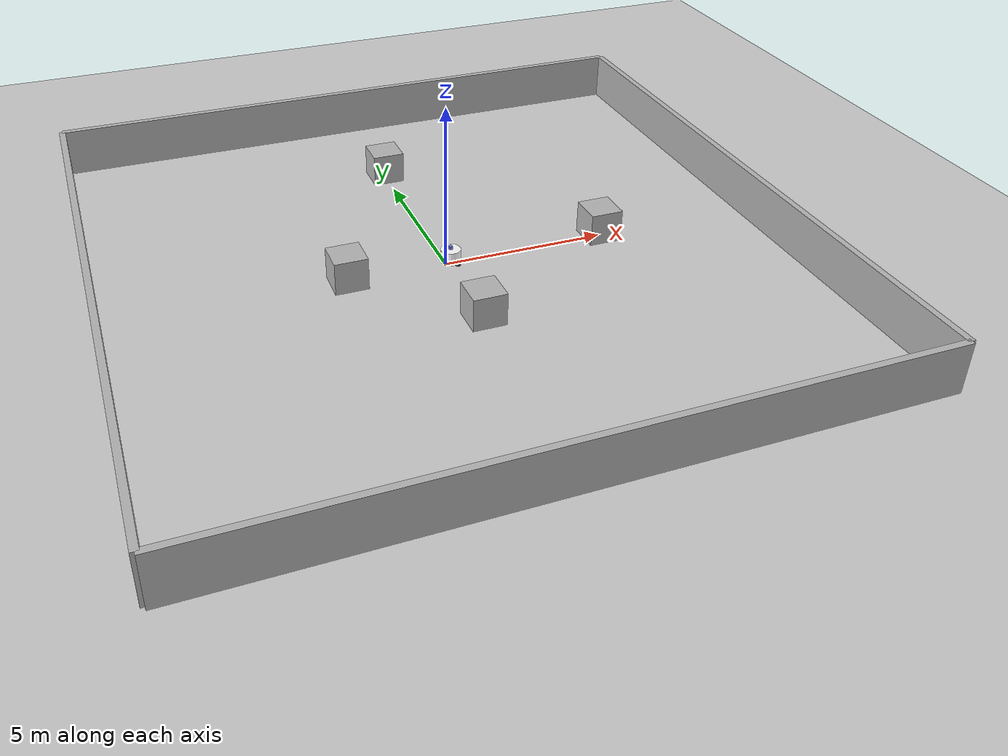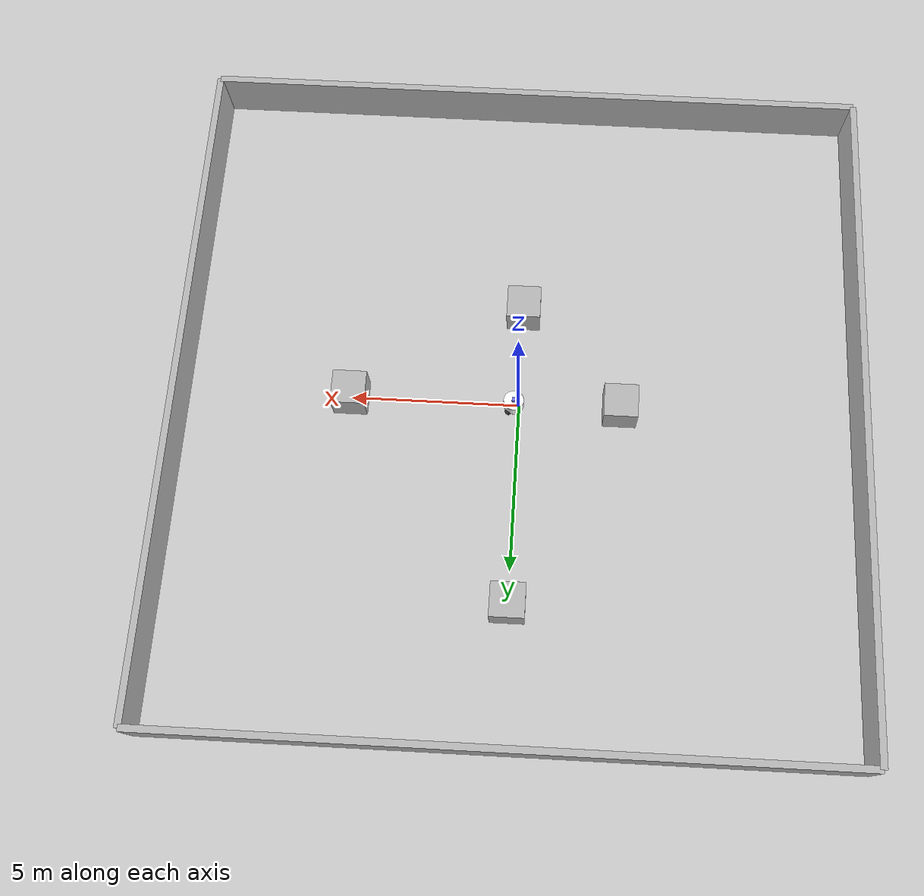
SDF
<?xml version="1.0" ?>
<sdf version="1.6">
  <world name="diff_drive">

    <physics name="1ms" type="ignored">
      <max_step_size>0.064</max_step_size>
      <real_time_factor>0</real_time_factor>
    </physics>

      <plugin
        name='ignition::gazebo::systems::Physics'
        filename='ignition-gazebo-physics-system'/>
    <plugin
      filename="ignition-gazebo-user-commands-system"
      name="ignition::gazebo::systems::UserCommands">
    </plugin>
    <plugin
      filename="ignition-gazebo-scene-broadcaster-system"
      name="ignition::gazebo::systems::SceneBroadcaster">
    </plugin>

    <plugin
      filename="libignition-gazebo-sensors-system.so"
      name="ignition::gazebo::systems::Sensors">
      <render_engine>ogre2</render_engine>
    </plugin>

        <gui fullscreen="0">

      <!-- 3D scene -->
      <plugin filename="GzScene3D" name="3D View">
        <ignition-gui>
          <title>3D View</title>
          <property type="bool" key="showTitleBar">false</property>
          <property type="string" key="state">docked</property>
        </ignition-gui>

        <engine>ogre2</engine>
        <scene>scene</scene>
        <ambient_light>0.4 0.4 0.4</ambient_light>
        <background_color>0.8 0.8 0.8</background_color>
        <camera_pose>-6 0 6 0 0.5 0</camera_pose>
      </plugin>

      <!-- World control -->
      <plugin filename="WorldControl" name="World control">
        <ignition-gui>
          <title>World control</title>
          <property type="bool" key="showTitleBar">false</property>
          <property type="bool" key="resizable">false</property>
          <property type="double" key="height">72</property>
          <property type="double" key="width">121</property>
          <property type="double" key="z">1</property>

          <property type="string" key="state">floating</property>
          <anchors target="3D View">
            <line own="left" target="left"/>
            <line own="bottom" target="bottom"/>
          </anchors>
        </ignition-gui>

        <play_pause>true</play_pause>
        <step>true</step>
        <start_paused>true</start_paused>

      </plugin>

      <!-- World statistics -->
      <plugin filename="WorldStats" name="World stats">
        <ignition-gui>
          <title>World stats</title>
          <property type="bool" key="showTitleBar">false</property>
          <property type="bool" key="resizable">false</property>
          <property type="double" key="height">110</property>
          <property type="double" key="width">290</property>
          <property type="double" key="z">1</property>

          <property type="string" key="state">floating</property>
          <anchors target="3D View">
            <line own="right" target="right"/>
            <line own="bottom" target="bottom"/>
          </anchors>
        </ignition-gui>

        <sim_time>true</sim_time>
        <real_time>true</real_time>
        <real_time_factor>true</real_time_factor>
        <iterations>true</iterations>
      </plugin>

      <!-- Inspector -->
      <plugin filename="ComponentInspector" name="Component inspector">
        <ignition-gui>
          <property type="string" key="state">docked_collapsed</property>
        </ignition-gui>
      </plugin>

      <!-- Entity tree -->
      <plugin filename="EntityTree" name="Entity tree">
        <ignition-gui>
          <property type="string" key="state">docked_collapsed</property>
        </ignition-gui>
      </plugin>

      <plugin filename="VisualizeLidar" name="Visualize Lidar">
        <ignition-gui>
          <property key="state" type="string">docked_collapsed</property>
        </ignition-gui>
      </plugin>

      <!-- Translate / rotate -->
      <plugin filename="TransformControl" name="Transform control">
        <ignition-gui>
          <title>Transform control</title>
          <anchors target="3D View">
            <line own="left" target="left"/>
            <line own="top" target="top"/>
          </anchors>
          <property key="resizable" type="bool">false</property>
          <property key="width" type="double">230</property>
          <property key="height" type="double">50</property>
          <property key="state" type="string">floating</property>
          <property key="showTitleBar" type="bool">false</property>
          <property key="cardBackground" type="string">#666666</property>
        </ignition-gui>
      </plugin>

      <!-- Insert simple shapes -->
      <plugin filename="Shapes" name="Shapes">
        <ignition-gui>
          <anchors target="Transform control">
            <line own="left" target="right"/>
            <line own="top" target="top"/>
          </anchors>
          <property key="resizable" type="bool">false</property>
          <property key="width" type="double">200</property>
          <property key="height" type="double">50</property>
          <property key="state" type="string">floating</property>
          <property key="showTitleBar" type="bool">false</property>
          <property key="cardBackground" type="string">#666666</property>
        </ignition-gui>
      </plugin>

    </gui>

    <light type="directional" name="sun">
      <cast_shadows>true</cast_shadows>
      <pose>0 0 10 0 0 0</pose>
      <diffuse>1 1 1 1</diffuse>
      <specular>0.5 0.5 0.5 1</specular>
      <attenuation>
        <range>1000</range>
        <constant>0.9</constant>
        <linear>0.01</linear>
        <quadratic>0.001</quadratic>
      </attenuation>
      <direction>-0.5 0.1 -0.9</direction>
    </light>

    <model name="ground_plane">
      <static>true</static>
      <link name="link">
        <collision name="collision">
          <geometry>
            <plane>
              <normal>0 0 1</normal>
            </plane>
          </geometry>
        </collision>
        <visual name="visual">
          <geometry>
            <plane>
              <normal>0 0 1</normal>
              <size>100 100</size>
            </plane>
          </geometry>
          <material>
            <ambient>0.8 0.8 0.8 1</ambient>
            <diffuse>0.8 0.8 0.8 1</diffuse>
            <specular>0.8 0.8 0.8 1</specular>
          </material>
        </visual>
      </link>
    </model>

    <model name="wall">
      <pose>10 0 0.5 0 0 0</pose>
      <link name="body">
        <collision name="collision1">
          <geometry>
            <box>
              <size>0.2 20 2</size>
            </box>
          </geometry>
        </collision>
        <visual name="visual1">
          <geometry>
            <box>
              <size>0.2 20 2</size>
            </box>
          </geometry>
        </visual>
      </link>
    </model>

    <model name="wall1">
      <pose>-10 0 0.5 0 0 0</pose>
      <link name="body">
        <collision name="collision1">
          <geometry>
            <box>
              <size>0.2 20 2</size>
            </box>
          </geometry>
        </collision>
        <visual name="visual1">
          <geometry>
            <box>
              <size>0.2 20 2</size>
            </box>
          </geometry>
        </visual>
      </link>
    </model>

    <model name="wall2">
      <pose>0 10 0.5 0 0 0</pose>
      <link name="body">
        <collision name="collision1">
          <geometry>
            <box>
              <size>20 0.2 2</size>
            </box>
          </geometry>
        </collision>
        <visual name="visual1">
          <geometry>
            <box>
              <size>20 0.2 2</size>
            </box>
          </geometry>
        </visual>
      </link>
    </model>

    <model name="wall3">
      <pose>0 -10 0.5 0 0 0</pose>
      <link name="body">
        <collision name="collision1">
          <geometry>
            <box>
              <size>20 0.2 2</size>
            </box>
          </geometry>
        </collision>
        <visual name="visual1">
          <geometry>
            <box>
              <size>20 0.2 2</size>
            </box>
          </geometry>
        </visual>
      </link>
    </model>

    <model name="box">
      <pose>5 0 0.5 0 0 0</pose>
      <link name="body">
        <collision name="collision1">
          <geometry>
            <box>
              <size>1 1 1</size>
            </box>
          </geometry>
        </collision>
        <visual name="visual1">
          <geometry>
            <box>
              <size>1 1 1</size>
            </box>
          </geometry>
        </visual>
      </link>
    </model>

    <model name="box1">
      <pose>-3 0 0.5 0 0 0</pose>
      <link name="body">
        <collision name="collision1">
          <geometry>
            <box>
              <size>1 1 1</size>
            </box>
          </geometry>
        </collision>
        <visual name="visual1">
          <geometry>
            <box>
              <size>1 1 1</size>
            </box>
          </geometry>
        </visual>
      </link>
    </model>

    <model name="box2">
      <pose>0 6 0.5 0 0 0</pose>
      <link name="body">
        <collision name="collision1">
          <geometry>
            <box>
              <size>1 1 1</size>
            </box>
          </geometry>
        </collision>
        <visual name="visual1">
          <geometry>
            <box>
              <size>1 1 1</size>
            </box>
          </geometry>
        </visual>
      </link>
    </model>

    <model name="box3">
      <pose>0 -3 0.5 0 0 0</pose>
      <link name="body">
        <collision name="collision1">
          <geometry>
            <box>
              <size>1 1 1</size>
            </box>
          </geometry>
        </collision>
        <visual name="visual1">
          <geometry>
            <box>
              <size>1 1 1</size>
            </box>
          </geometry>
        </visual>
      </link>
    </model>

    <model name='vehicle_blue'>
      <pose>0 0  0.3 0 -0 0</pose>

      <link name='chassis'>
        <pose>0.151427 -0 0.00 0 -0 0</pose>
        <inertial>
          <mass>1.14395</mass>
          <inertia>
            <ixx>0.126164</ixx>
            <ixy>0</ixy>
            <ixz>0</ixz>
            <iyy>0.416519</iyy>
            <iyz>0</iyz>
            <izz>0.481014</izz>
          </inertia>
        </inertial>
        <visual name='visual'>
          <geometry>
            <cylinder>
              <radius> 0.3 </radius>
              <length> 0.4 </length>
            </cylinder>
          </geometry>
          <material>
            <ambient>1.5 1.5 1.0 1</ambient>
            <diffuse>1.5 1.5 1.0 1</diffuse>
            <specular>0.0 0.0 1.0 1</specular>
          </material>
        </visual>
        <collision name='collision'>
          <geometry>
            <cylinder>
              <radius> 0.3 </radius>
              <length> 0.4 </length>
            </cylinder>
          </geometry>
        </collision>
      </link>

      <link name='left_wheel'>
        <pose>0.3 0.225 -0.2 -1.5707 0 0</pose>
        <inertial>
          <mass>2</mass>
          <inertia>
            <ixx>0.01</ixx>
            <ixy>0</ixy>
            <ixz>0</ixz>
            <iyy>0.01</iyy>
            <iyz>0</iyz>
            <izz>0.01</izz>
          </inertia>
        </inertial>
        <visual name='visual'>
          <geometry>
            <sphere>
              <radius>0.1</radius>
            </sphere>
          </geometry>
          <material>
            <ambient>0.2 0.2 0.2 1</ambient>
            <diffuse>0.2 0.2 0.2 1</diffuse>
            <specular>0.2 0.2 0.2 1</specular>
          </material>
        </visual>
        <collision name='collision'>
          <geometry>
            <sphere>
              <radius>0.1</radius>
            </sphere>
          </geometry>
        </collision>
      </link>

      <link name='right_wheel'>
        <pose>0.3 -0.225 -0.2 -1.5707 0 0</pose>
        <inertial>
          <mass>2</mass>
          <inertia>
            <ixx>0.01</ixx>
            <ixy>0</ixy>
            <ixz>0</ixz>
            <iyy>0.01</iyy>
            <iyz>0</iyz>
            <izz>0.01</izz>
          </inertia>
        </inertial>
        <visual name='visual'>
          <geometry>
            <sphere>
              <radius>0.1</radius>
            </sphere>
          </geometry>
          <material>
            <ambient>0.2 0.2 0.2 1</ambient>
            <diffuse>0.2 0.2 0.2 1</diffuse>
            <specular>0.2 0.2 0.2 1</specular>
          </material>
        </visual>
        <collision name='collision'>
          <geometry>
            <sphere>
              <radius>0.1</radius>
            </sphere>
          </geometry>
        </collision>
      </link>

      <link name='caster'>
        <pose>-0.0 -0 -0.2 0 -0 0</pose>
        <inertial>
          <mass>1</mass>
          <inertia>
            <ixx>0.1</ixx>
            <ixy>0</ixy>
            <ixz>0</ixz>
            <iyy>0.1</iyy>
            <iyz>0</iyz>
            <izz>0.1</izz>
          </inertia>
        </inertial>
        <visual name='visual'>
          <geometry>
            <sphere>
              <radius>0.1</radius>
            </sphere>
          </geometry>
          <material>
            <ambient>0.2 0.2 0.2 1</ambient>
            <diffuse>0.2 0.2 0.2 1</diffuse>
            <specular>0.2 0.2 0.2 1</specular>
          </material>
        </visual>
        <collision name='collision'>
          <geometry>
            <sphere>
              <radius>0.1</radius>
            </sphere>
          </geometry>
        </collision>
      </link>

      <link name='lidar'>
        <pose>0.15 -0 0.25 0 -0 0</pose>
        <inertial>
          <mass>1.14395</mass>
          <inertia>
            <ixx>0.126164</ixx>
            <ixy>0</ixy>
            <ixz>0</ixz>
            <iyy>0.416519</iyy>
            <iyz>0</iyz>
            <izz>0.481014</izz>
          </inertia>
        </inertial>
        <visual name='visual'>
          <geometry>
            <box>
              <size>0.1 0.11 0.1</size>
            </box>
          </geometry>
          <material>
            <ambient>0.5 0.5 1.0 1</ambient>
            <diffuse>0.5 0.5 1.0 1</diffuse>
            <specular>0.0 0.0 1.0 1</specular>
          </material>
        </visual>
        <sensor name='gpu_lidar' type='gpu_lidar'>
          <topic>lidar</topic>
          <update_rate>1000</update_rate>
          <lidar>
            <scan>
              <horizontal>
                <samples>100</samples>
                <resolution>1</resolution>
                <min_angle>-3.14</min_angle>
                <max_angle>3.14</max_angle>
              </horizontal>
              <vertical>
                <samples>1</samples>
                <resolution>1</resolution>
                <min_angle>-0</min_angle>
                <max_angle>0</max_angle>
              </vertical>
            </scan>
            <range>
              <min>0.08</min>
              <max>5.0</max>
              <resolution>0.01</resolution>
            </range>
          </lidar>
          <alwaysOn>1</alwaysOn>
          <visualize>true</visualize>
        </sensor>
      </link>

      <joint name='left_wheel_joint' type='revolute'>
        <parent>chassis</parent>
        <child>left_wheel</child>
        <axis>
          <xyz>0 0 1</xyz>
          <limit>
            <lower>-1.79769e+308</lower>
            <upper>1.79769e+308</upper>
          </limit>
        </axis>
      </joint>

       <joint name='lidar_joint' type='fixed'>
        <parent>chassis</parent>
        <child>lidar</child>
        <axis>
          <xyz>0 0 1</xyz>
          <limit>
            <lower>-1.79769e+308</lower>
            <upper>1.79769e+308</upper>
          </limit>
        </axis>
      </joint>

      <joint name='right_wheel_joint' type='revolute'>
        <parent>chassis</parent>
        <child>right_wheel</child>
        <axis>
          <xyz>0 0 1</xyz>
          <limit>
            <lower>-1.79769e+308</lower>
            <upper>1.79769e+308</upper>
          </limit>
        </axis>
      </joint>

      <joint name='caster_wheel' type='ball'>
        <parent>chassis</parent>
        <child>caster</child>
      </joint>

      <plugin
        filename="ignition-gazebo-diff-drive-system"
        name="ignition::gazebo::systems::DiffDrive">
        <left_joint>left_wheel_joint</left_joint>
        <right_joint>right_wheel_joint</right_joint>
        <wheel_separation>0.450</wheel_separation>
        <wheel_radius>0.1</wheel_radius>
        <odom_publish_frequency>1000</odom_publish_frequency>
      </plugin>

    </model>
  </world>
</sdf>
